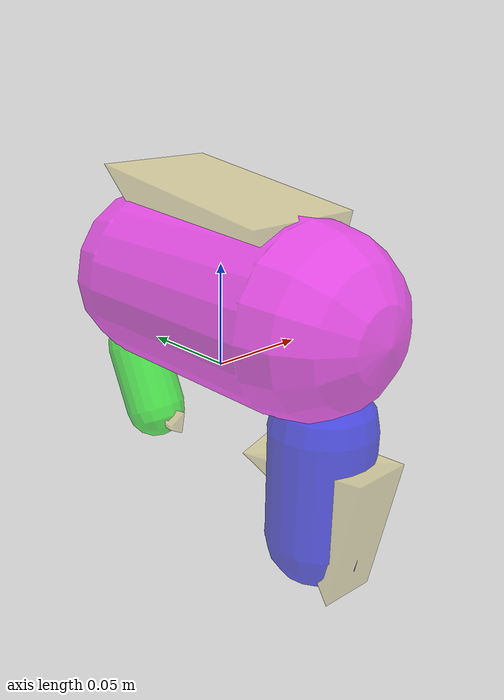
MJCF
<mujoco model="test_carabiner_capsules">
  <compiler angle="radian" meshdir="meshes_blender" autolimits="true"/>

  <asset>
    <mesh name="carabiner_visual" file="simplified/simplified_carabiner/simplified_carabiner.obj" scale="0.001 0.001 0.001"/>
  </asset>

  <visual>
    <headlight ambient="0.4 0.4 0.4" diffuse="0.7 0.7 0.7" specular="0.1 0.1 0.1"/>
  </visual>

  <worldbody>
    <light pos="0 0 1" dir="0 0 -1" diffuse="0.7 0.7 0.7"/>

    <!-- Semi-transparent carabiner visual (alpha=0.35) -->
    <geom type="mesh" mesh="carabiner_visual" rgba="0.85 0.75 0.25 0.35"
          contype="0" conaffinity="0"/>

    <!-- Capsules tracing the carabiner rod -->
    <!-- Red: same angle, shifted outward perpendicular by ~10mm so inner surface aligns with hook inner curve -->
    <geom type="capsule"
          fromto="-0.00199  0.04800  0.03800  -0.00199  0.07300  0.00600"
          size="0.01509" rgba="1 0 0 0.6" contype="0" conaffinity="0"/>
    <!-- Green: same angle, shifted outward perpendicular by ~10mm -->
    <geom type="capsule"
          fromto="-0.00008  0.06900 -0.00900  -0.00008  0.05400 -0.04200"
          size="0.01612" rgba="0 1 0 0.6" contype="0" conaffinity="0"/>
    <!-- Blue: unchanged (lower vertical) -->
    <geom type="capsule"
          fromto=" 0.00000 -0.06627 -0.06293   0.00000 -0.06627 -0.00854"
          size="0.02426" rgba="0 0 1 0.6" contype="0" conaffinity="0"/>
    <!-- Magenta: aligned with visual mesh top, z lowered slightly -->
    <geom type="capsule"
          fromto="-0.01692 -0.07000  0.04400  -0.01692  0.02200  0.04400"
          size="0.04000" rgba="1 0 1 0.6" contype="0" conaffinity="0"/>
  </worldbody>
</mujoco>
